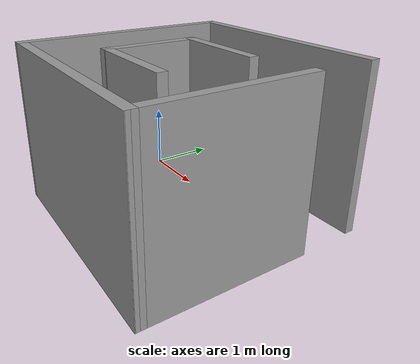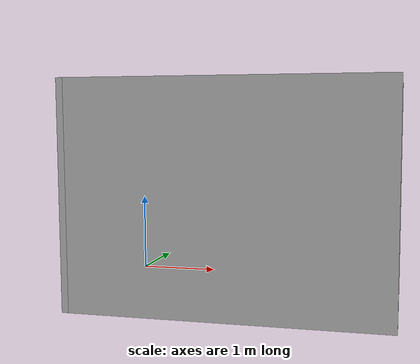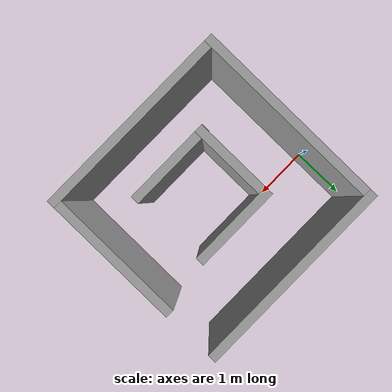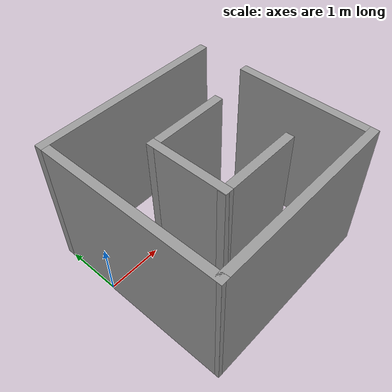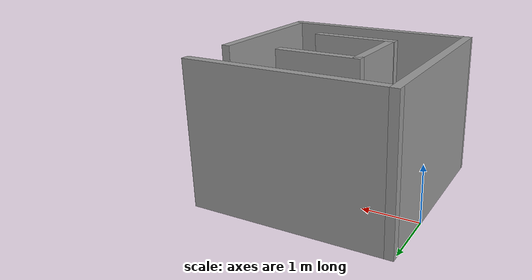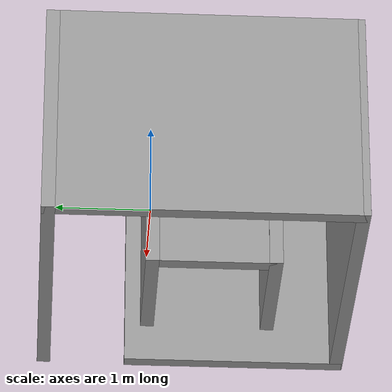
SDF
<?xml version='1.0'?>
<sdf version='1.7'>
  <model name='test'>
    <pose>1.75 -0.600111 0 0 -0 0</pose>
    <link name='Wall_0'>
      <collision name='Wall_0_Collision'>
        <geometry>
          <box>
            <size>3.5 0.15 2.5</size>
          </box>
        </geometry>
        <pose>0 0 1.25 0 -0 0</pose>
      </collision>
      <visual name='Wall_0_Visual'>
        <pose>0 0 1.25 0 -0 0</pose>
        <geometry>
          <box>
            <size>3.5 0.15 2.5</size>
          </box>
        </geometry>
        <material>
          <script>
            <uri>file://media/materials/scripts/gazebo.material</uri>
            <name>Gazebo/Grey</name>
          </script>
          <ambient>1 1 1 1</ambient>
        </material>
        <meta>
          <layer>0</layer>
        </meta>
      </visual>
      <pose>-0.015 1.68011 0 0 -0 0</pose>
    </link>
    <link name='Wall_3'>
      <collision name='Wall_3_Collision'>
        <geometry>
          <box>
            <size>3.5 0.15 2.5</size>
          </box>
        </geometry>
        <pose>0 0 1.25 0 -0 0</pose>
      </collision>
      <visual name='Wall_3_Visual'>
        <pose>0 0 1.25 0 -0 0</pose>
        <geometry>
          <box>
            <size>3.5 0.15 2.5</size>
          </box>
        </geometry>
        <material>
          <script>
            <uri>file://media/materials/scripts/gazebo.material</uri>
            <name>Gazebo/Grey</name>
          </script>
          <ambient>1 1 1 1</ambient>
        </material>
        <meta>
          <layer>0</layer>
        </meta>
      </visual>
      <pose>-1.69 0.005111 0 0 -0 -1.5708</pose>
    </link>
    <link name='Wall_4'>
      <collision name='Wall_4_Collision'>
        <geometry>
          <box>
            <size>3.53006 0.15 2.5</size>
          </box>
        </geometry>
        <pose>0 0 1.25 0 -0 0</pose>
      </collision>
      <visual name='Wall_4_Visual'>
        <pose>0 0 1.25 0 -0 0</pose>
        <geometry>
          <box>
            <size>3.53006 0.15 2.5</size>
          </box>
        </geometry>
        <material>
          <script>
            <uri>file://media/materials/scripts/gazebo.material</uri>
            <name>Gazebo/Grey</name>
          </script>
          <ambient>1 1 1 1</ambient>
        </material>
        <meta>
          <layer>0</layer>
        </meta>
      </visual>
      <pose>0 -1.67489 0 0 -0 -0.002959</pose>
    </link>
    <link name='Wall_5'>
      <collision name='Wall_5_Collision'>
        <geometry>
          <box>
            <size>2.5 0.15 2.5</size>
          </box>
        </geometry>
        <pose>0 0 1.25 0 -0 0</pose>
      </collision>
      <visual name='Wall_5_Visual'>
        <pose>0 0 1.25 0 -0 0</pose>
        <geometry>
          <box>
            <size>2.5 0.15 2.5</size>
          </box>
        </geometry>
        <material>
          <script>
            <uri>file://media/materials/scripts/gazebo.material</uri>
            <name>Gazebo/Grey</name>
          </script>
          <ambient>1 1 1 1</ambient>
        </material>
        <meta>
          <layer>0</layer>
        </meta>
      </visual>
      <pose>1.69 -0.494889 0 0 -0 1.5708</pose>
    </link>
    <link name='Wall_7'>
      <collision name='Wall_7_Collision'>
        <geometry>
          <box>
            <size>1.5 0.15 2.5</size>
          </box>
        </geometry>
        <pose>0 0 1.25 0 -0 0</pose>
      </collision>
      <visual name='Wall_7_Visual'>
        <pose>0 0 1.25 0 -0 0</pose>
        <geometry>
          <box>
            <size>1.5 0.15 2.5</size>
          </box>
        </geometry>
        <material>
          <script>
            <uri>file://media/materials/scripts/gazebo.material</uri>
            <name>Gazebo/Grey</name>
          </script>
          <ambient>1 1 1 1</ambient>
        </material>
        <meta>
          <layer>0</layer>
        </meta>
      </visual>
      <pose>0.065 0.530111 0 0 -0 3.14159</pose>
    </link>
    <link name='Wall_8'>
      <collision name='Wall_8_Collision'>
        <geometry>
          <box>
            <size>1.5 0.15 2.5</size>
          </box>
        </geometry>
        <pose>0 0 1.25 0 -0 0</pose>
      </collision>
      <visual name='Wall_8_Visual'>
        <pose>0 0 1.25 0 -0 0</pose>
        <geometry>
          <box>
            <size>1.5 0.15 2.5</size>
          </box>
        </geometry>
        <material>
          <script>
            <uri>file://media/materials/scripts/gazebo.material</uri>
            <name>Gazebo/Grey</name>
          </script>
          <ambient>1 1 1 1</ambient>
        </material>
        <meta>
          <layer>0</layer>
        </meta>
      </visual>
      <pose>-0.61 -0.144889 0 0 -0 -1.5708</pose>
    </link>
    <link name='Wall_9'>
      <collision name='Wall_9_Collision'>
        <geometry>
          <box>
            <size>1.53 0.15 2.5</size>
          </box>
        </geometry>
        <pose>0 0 1.25 0 -0 0</pose>
      </collision>
      <visual name='Wall_9_Visual'>
        <pose>0 0 1.25 0 -0 0</pose>
        <geometry>
          <box>
            <size>1.53 0.15 2.5</size>
          </box>
        </geometry>
        <material>
          <script>
            <uri>file://media/materials/scripts/gazebo.material</uri>
            <name>Gazebo/Grey</name>
          </script>
          <ambient>1 1 1 1</ambient>
        </material>
        <meta>
          <layer>0</layer>
        </meta>
      </visual>
      <pose>0.07 -0.819889 0 0 -0 0</pose>
    </link>
    <static>1</static>
  </model>
</sdf>
